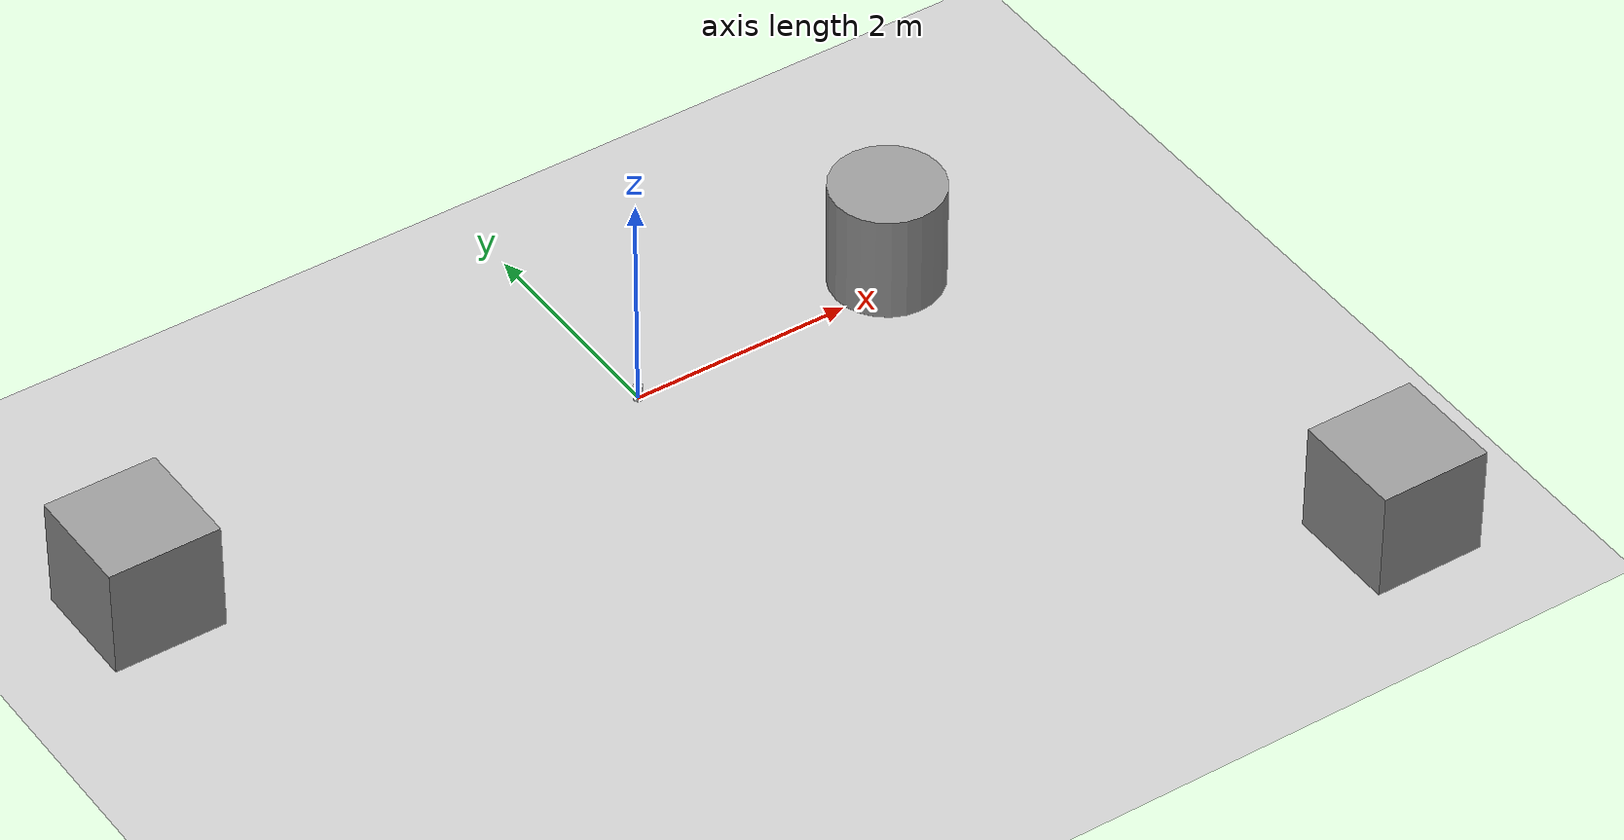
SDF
<sdf version="1.6">
 <world name="default">
  <light name="sun" type="directional">
   <pose>0 0 10 0 -0 0</pose>
   <diffuse>0.8 0.8 0.8 1</diffuse>
   <specular>0.2 0.2 0.2 1</specular>
   <attenuation>
    <range>1000</range>
    <constant>0.9</constant>
    <linear>0.01</linear>
    <quadratic>0.001</quadratic>
   </attenuation>
   <direction>-0.5 0.1 -0.9</direction>
  </light>
  <model name="ground_plane">
   <static>1</static>
   <link name="link">
    <collision name="collision">
     <geometry><plane><normal>0 0 1</normal><size>100 100</size></plane></geometry>
     <surface><friction><ode><mu>100</mu><mu2>50</mu2></ode></friction></surface>
    </collision>
    <visual name="visual">
     <cast_shadows>0</cast_shadows>
     <geometry><plane><normal>0 0 1</normal><size>100 100</size></plane></geometry>
     <material>
      <script><uri>file://media/materials/scripts/gazebo.material</uri><name>Gazebo/Grey</name></script>
     </material>
    </visual>
   </link>
  </model>
  <model name="my_velodyne">
   <pose>-0 0 -9e-06 2e-06 -5e-06 -0.003816</pose>
   <link name="velodyne_hdl-32::base">
    <pose>0 0 0.029335 0 -0 0</pose>
    <inertial>
     <mass>1.2</mass>
     <inertia>
      <ixx>0.00108747</ixx>
      <iyy>0.00108747</iyy>
      <izz>0.00109244</izz>
      <ixy>0</ixy>
      <ixz>0</ixz>
      <iyz>0</iyz>
     </inertia>
    </inertial>
    <collision name="base_collision">
     <geometry><cylinder><radius>0.04267</radius><length>0.05867</length></cylinder></geometry>
    </collision>
    <visual name="base_visual">
     <geometry><cylinder><radius>0.04267</radius><length>0.05867</length></cylinder></geometry>
    </visual>
   </link>
   <link name="velodyne_hdl-32::top">
    <pose>0 0 0.095455 0 -0 0</pose>
    <inertial>
     <mass>0.1</mass>
     <inertia>
      <ixx>9.0623e-05</ixx>
      <iyy>9.0623e-05</iyy>
      <izz>9.1036e-05</izz>
      <ixy>0</ixy>
      <ixz>0</ixz>
      <iyz>0</iyz>
     </inertia>
    </inertial>
    <collision name="top_collision">
     <geometry><cylinder><radius>0.04267</radius><length>0.07357</length></cylinder></geometry>
    </collision>
    <visual name="top_visual">
     <geometry><cylinder><radius>0.04267</radius><length>0.07357</length></cylinder></geometry>
    </visual>
    <sensor name="sensor" type="ray">
     <pose>0 0 -0.004645 1.5707 -0 0</pose>
     <visualize>1</visualize>
     <update_rate>30</update_rate>
     <ray>
      <scan>
       <horizontal>
        <samples>32</samples>
        <resolution>1</resolution>
        <min_angle>-0.535292</min_angle>
        <max_angle>0.186227</max_angle>
       </horizontal>
       <vertical><samples>1</samples><min_angle>0</min_angle><max_angle>0</max_angle></vertical>
      </scan>
      <range><min>0.05</min><max>70</max><resolution>0.02</resolution></range>
     </ray>
    </sensor>
   </link>
   <joint name="velodyne_hdl-32::joint" type="revolute">
    <pose>0 0 -0.036785 0 -0 0</pose>
    <parent>velodyne_hdl-32::base</parent>
    <child>velodyne_hdl-32::top</child>
    <axis>
     <xyz>0 0 1</xyz>
     <limit><lower>-1e+16</lower><upper>1e+16</upper></limit>
     <use_parent_model_frame>0</use_parent_model_frame>
     <dynamics><spring_reference>0</spring_reference><spring_stiffness>0</spring_stiffness></dynamics>
    </axis>
   </joint>
   <plugin name="velodyne_control" filename="libvelodyne_plugin.so"><velocity>25</velocity></plugin>
   <plugin name="gazebo_ros_head_hokuyo_controller" filename="libgazebo_ros_laser.so"/>
  </model>
  <gravity>0 0 -9.8</gravity>
  <magnetic_field>6e-06 2.3e-05 -4.2e-05</magnetic_field>
  <atmosphere type="adiabatic"/>
  <physics name="default_physics" default="0" type="ode">
   <max_step_size>0.001</max_step_size>
   <real_time_factor>1</real_time_factor>
   <real_time_update_rate>1000</real_time_update_rate>
  </physics>
  <scene><ambient>0.4 0.4 0.4 1</ambient><background>0.7 0.7 0.7 1</background><shadows>1</shadows></scene>
  <spherical_coordinates>
   <surface_model>EARTH_WGS84</surface_model>
   <latitude_deg>0</latitude_deg>
   <longitude_deg>0</longitude_deg>
   <elevation>0</elevation>
   <heading_deg>0</heading_deg>
  </spherical_coordinates>
  <model name="unit_cylinder">
   <pose>2.51124 0.118744 0.5 0 -0 0</pose>
   <link name="link">
    <inertial>
     <mass>1</mass>
     <inertia><ixx>0.145833</ixx><ixy>0</ixy><ixz>0</ixz><iyy>0.145833</iyy><iyz>0</iyz><izz>0.125</izz></inertia>
    </inertial>
    <collision name="collision">
     <geometry><cylinder><radius>0.5</radius><length>1</length></cylinder></geometry>
    </collision>
    <visual name="visual">
     <geometry><cylinder><radius>0.5</radius><length>1</length></cylinder></geometry>
     <material>
      <script><name>Gazebo/Grey</name><uri>file://media/materials/scripts/gazebo.material</uri></script>
     </material>
    </visual>
   </link>
  </model>
  <model name="unit_box">
   <pose>4.04496 -4.69292 0.5 0 -0 0</pose>
   <link name="link">
    <inertial>
     <mass>1</mass>
     <inertia>
      <ixx>0.166667</ixx>
      <ixy>0</ixy>
      <ixz>0</ixz>
      <iyy>0.166667</iyy>
      <iyz>0</iyz>
      <izz>0.166667</izz>
     </inertia>
    </inertial>
    <collision name="collision"><geometry><box><size>1 1 1</size></box></geometry></collision>
    <visual name="visual">
     <geometry><box><size>1 1 1</size></box></geometry>
     <material>
      <script><name>Gazebo/Grey</name><uri>file://media/materials/scripts/gazebo.material</uri></script>
     </material>
    </visual>
   </link>
  </model>
  <model name="unit_box_0">
   <pose>-4.62436 0.06546 0.5 0 -0 0</pose>
   <link name="link">
    <inertial>
     <mass>1</mass>
     <inertia>
      <ixx>0.166667</ixx>
      <ixy>0</ixy>
      <ixz>0</ixz>
      <iyy>0.166667</iyy>
      <iyz>0</iyz>
      <izz>0.166667</izz>
     </inertia>
    </inertial>
    <collision name="collision"><geometry><box><size>1 1 1</size></box></geometry></collision>
    <visual name="visual">
     <geometry><box><size>1 1 1</size></box></geometry>
     <material>
      <script><name>Gazebo/Grey</name><uri>file://media/materials/scripts/gazebo.material</uri></script>
     </material>
    </visual>
   </link>
  </model>
 </world>
</sdf>
